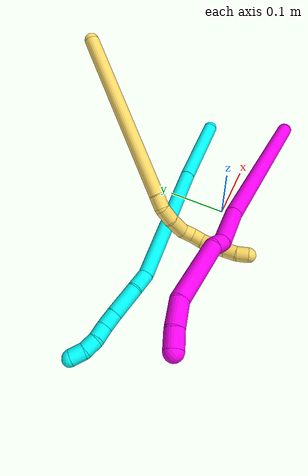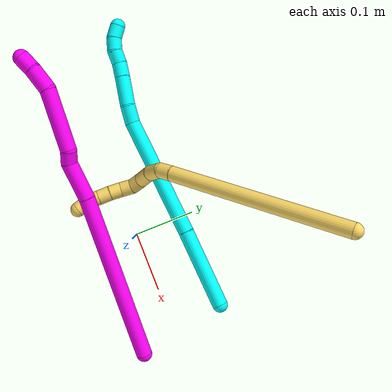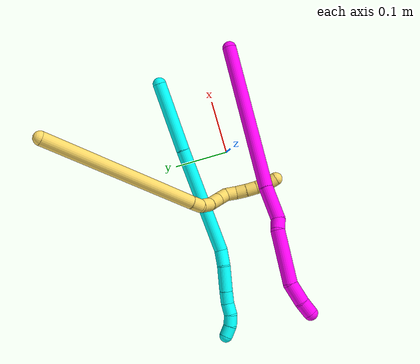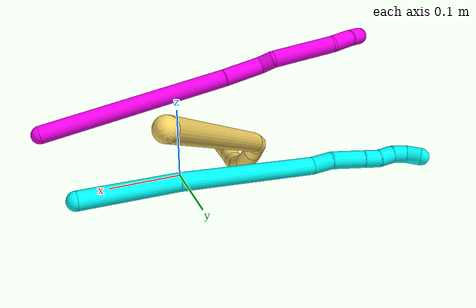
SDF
<sdf version="1.7">
 <world name="default">
  <model name="photoneo_s_sensor">
   <static>1</static>
   <pose>0 0 2 1.57079 1.57079 3.14159</pose>
   <link name="link">
    <inertial><mass>0.1</mass></inertial>
    <sensor name="sensor" type="depth">
     <update_rate>30</update_rate>
     <camera>
      <horizontal_fov>1.22</horizontal_fov>
      <image><width>1920</width><height>1200</height><format>B8G8R8</format></image>
      <clip><near>0.1</near><far>4</far></clip>
      <depth_camera><output>points</output></depth_camera>
     </camera>
     <plugin name="camera_plugin" filename="libgazebo_ros_depth_camera.so">
      <baseline>0.2</baseline>
      <alwaysOn>1</alwaysOn>
      <updateRate>0.0</updateRate>
      <cameraName>camera_ir</cameraName>
      <imageTopicName>/camera/color/image_raw</imageTopicName>
      <cameraInfoTopicName>/camera/color/camera_info</cameraInfoTopicName>
      <depthImageTopicName>/camera/depth/image_raw</depthImageTopicName>
      <depthImageCameraInfoTopicName>/camera/depth/camera_info</depthImageCameraInfoTopicName>
      <pointCloudTopicName>/camera/depth/points</pointCloudTopicName>
      <frameName>fr_optical</frameName>
      <pointCloudCutoff>0.1</pointCloudCutoff>
      <pointCloudCutoffMax>2.0</pointCloudCutoffMax>
      <distortionK1>0</distortionK1>
      <distortionK2>0</distortionK2>
      <distortionK3>0</distortionK3>
      <distortionT1>0</distortionT1>
      <distortionT2>0</distortionT2>
      <CxPrime>0</CxPrime>
      <Cx>0</Cx>
      <Cy>0</Cy>
      <focalLength>0</focalLength>
      <hackBaseline>0</hackBaseline>
     </plugin>
    </sensor>
   </link>
  </model>
  <model name="bin">
   <static>1</static>
   <link name="bottom">
    <collision name="collision-bottom">
     <pose>0 0 -0.01 0 -0 0</pose>
     <geometry><box><size>0.8 0.6 0.02</size></box></geometry>
     <surface>
      <friction><ode><mu>100</mu><mu2>100</mu2></ode></friction>
      <contact><collide_bitmask>65535</collide_bitmask></contact>
     </surface>
    </collision>
   </link>
   <link name="west_wall">
    <collision name="collision-west_wall">
     <pose>-0.41 0 0.1 0 -0 0</pose>
     <geometry><box><size>0.02 0.6 0.2</size></box></geometry>
     <surface>
      <friction><ode><mu>100</mu><mu2>100</mu2></ode></friction>
      <contact><collide_bitmask>65535</collide_bitmask></contact>
     </surface>
    </collision>
   </link>
   <link name="east_wall">
    <collision name="collision-east_wall">
     <pose>0.41 0 0.1 0 -0 0</pose>
     <geometry><box><size>0.02 0.6 0.2</size></box></geometry>
     <surface>
      <friction><ode><mu>100</mu><mu2>100</mu2></ode></friction>
      <contact><collide_bitmask>65535</collide_bitmask></contact>
     </surface>
    </collision>
   </link>
   <link name="south_wall">
    <collision name="collision-south_wall">
     <pose>0 -0.31 0.1 0 -0 0</pose>
     <geometry><box><size>0.8 0.02 0.2</size></box></geometry>
     <surface>
      <friction><ode><mu>100</mu><mu2>100</mu2></ode></friction>
      <contact><collide_bitmask>65535</collide_bitmask></contact>
     </surface>
    </collision>
   </link>
   <link name="north_wall">
    <collision name="collision-north_wall">
     <pose>0 0.31 0.1 0 -0 0</pose>
     <geometry><box><size>0.8 0.02 0.2</size></box></geometry>
     <surface>
      <friction><ode><mu>100</mu><mu2>100</mu2></ode></friction>
      <contact><collide_bitmask>65535</collide_bitmask></contact>
     </surface>
    </collision>
   </link>
  </model>
  <model name="3">
   <static>0</static>
   <link name="3">
    <collision name="collision-cylinder-e_1_1_4">
     <pose>-0.057579 -0.01938 0.023783 0.683741 -1.08124 -0.420883</pose>
     <geometry><cylinder><radius>0.0125</radius><length>0.130484</length></cylinder></geometry>
     <surface>
      <friction><ode><mu>1.16</mu><mu2>1.16</mu2><slip1>0</slip1><slip2>0</slip2></ode></friction>
      <contact><ode><kp>1e+06</kp><kd>1</kd><max_vel>0</max_vel><min_depth>0.001</min_depth></ode></contact>
     </surface>
    </collision>
    <visual name="visual-cylinder-e_1_1_4">
     <pose>-0.057579 -0.01938 0.023783 0.683741 -1.08124 -0.420883</pose>
     <geometry><cylinder><radius>0.0125</radius><length>0.130484</length></cylinder></geometry>
     <material><ambient>0.003922 1 0.996078 1</ambient></material>
    </visual>
    <collision name="collision-cylinder-e_2_4_5">
     <pose>-0.201052 -0.069261 0.091883 0.602794 -1.01122 -0.340861</pose>
     <geometry><cylinder><radius>0.0125</radius><length>0.202705</length></cylinder></geometry>
     <surface>
      <friction><ode><mu>1.16</mu><mu2>1.16</mu2><slip1>0</slip1><slip2>0</slip2></ode></friction>
      <contact><ode><kp>1e+06</kp><kd>1</kd><max_vel>0</max_vel><min_depth>0.001</min_depth></ode></contact>
     </surface>
    </collision>
    <visual name="visual-cylinder-e_2_4_5">
     <pose>-0.201052 -0.069261 0.091883 0.602794 -1.01122 -0.340861</pose>
     <geometry><cylinder><radius>0.0125</radius><length>0.202705</length></cylinder></geometry>
     <material><ambient>0.003922 1 0.996078 1</ambient></material>
    </visual>
    <collision name="collision-cylinder-e_3_5_6">
     <pose>-0.301008 -0.105442 0.138073 1.25239 -1.16876 -0.892481</pose>
     <geometry><cylinder><radius>0.0125</radius><length>0.030561</length></cylinder></geometry>
     <surface>
      <friction><ode><mu>1.16</mu><mu2>1.16</mu2><slip1>0</slip1><slip2>0</slip2></ode></friction>
      <contact><ode><kp>1e+06</kp><kd>1</kd><max_vel>0</max_vel><min_depth>0.001</min_depth></ode></contact>
     </surface>
    </collision>
    <visual name="visual-cylinder-e_3_5_6">
     <pose>-0.301008 -0.105442 0.138073 1.25239 -1.16876 -0.892481</pose>
     <geometry><cylinder><radius>0.0125</radius><length>0.030561</length></cylinder></geometry>
     <material><ambient>0.003922 1 0.996078 1</ambient></material>
    </visual>
    <collision name="collision-cylinder-e_4_6_7">
     <pose>-0.33473 -0.123445 0.14622 1.09987 -0.957755 -0.616264</pose>
     <geometry><cylinder><radius>0.0125</radius><length>0.048074</length></cylinder></geometry>
     <surface>
      <friction><ode><mu>1.16</mu><mu2>1.16</mu2><slip1>0</slip1><slip2>0</slip2></ode></friction>
      <contact><ode><kp>1e+06</kp><kd>1</kd><max_vel>0</max_vel><min_depth>0.001</min_depth></ode></contact>
     </surface>
    </collision>
    <visual name="visual-cylinder-e_4_6_7">
     <pose>-0.33473 -0.123445 0.14622 1.09987 -0.957755 -0.616264</pose>
     <geometry><cylinder><radius>0.0125</radius><length>0.048074</length></cylinder></geometry>
     <material><ambient>0.003922 1 0.996078 1</ambient></material>
    </visual>
    <collision name="collision-cylinder-e_5_7_8">
     <pose>-0.364206 -0.141739 0.155985 1.04165 -0.957096 -0.578499</pose>
     <geometry><cylinder><radius>0.0125</radius><length>0.024016</length></cylinder></geometry>
     <surface>
      <friction><ode><mu>1.16</mu><mu2>1.16</mu2><slip1>0</slip1><slip2>0</slip2></ode></friction>
      <contact><ode><kp>1e+06</kp><kd>1</kd><max_vel>0</max_vel><min_depth>0.001</min_depth></ode></contact>
     </surface>
    </collision>
    <visual name="visual-cylinder-e_5_7_8">
     <pose>-0.364206 -0.141739 0.155985 1.04165 -0.957096 -0.578499</pose>
     <geometry><cylinder><radius>0.0125</radius><length>0.024016</length></cylinder></geometry>
     <material><ambient>0.003922 1 0.996078 1</ambient></material>
    </visual>
    <collision name="collision-cylinder-e_6_8_9">
     <pose>-0.384418 -0.151095 0.161516 1.02881 -1.20735 -0.743195</pose>
     <geometry><cylinder><radius>0.0125</radius><length>0.022242</length></cylinder></geometry>
     <surface>
      <friction><ode><mu>1.16</mu><mu2>1.16</mu2><slip1>0</slip1><slip2>0</slip2></ode></friction>
      <contact><ode><kp>1e+06</kp><kd>1</kd><max_vel>0</max_vel><min_depth>0.001</min_depth></ode></contact>
     </surface>
    </collision>
    <visual name="visual-cylinder-e_6_8_9">
     <pose>-0.384418 -0.151095 0.161516 1.02881 -1.20735 -0.743195</pose>
     <geometry><cylinder><radius>0.0125</radius><length>0.022242</length></cylinder></geometry>
     <material><ambient>0.003922 1 0.996078 1</ambient></material>
    </visual>
    <collision name="collision-cylinder-e_7_9_10">
     <pose>-0.402946 -0.160738 0.165243 1.30726 -0.898105 -0.70718</pose>
     <geometry><cylinder><radius>0.0125</radius><length>0.0208</length></cylinder></geometry>
     <surface>
      <friction><ode><mu>1.16</mu><mu2>1.16</mu2><slip1>0</slip1><slip2>0</slip2></ode></friction>
      <contact><ode><kp>1e+06</kp><kd>1</kd><max_vel>0</max_vel><min_depth>0.001</min_depth></ode></contact>
     </surface>
    </collision>
    <visual name="visual-cylinder-e_7_9_10">
     <pose>-0.402946 -0.160738 0.165243 1.30726 -0.898105 -0.70718</pose>
     <geometry><cylinder><radius>0.0125</radius><length>0.0208</length></cylinder></geometry>
     <material><ambient>0.003922 1 0.996078 1</ambient></material>
    </visual>
    <collision name="collision-cylinder-e_8_10_2">
     <pose>-0.417102 -0.175668 0.167026 1.55984 -0.606838 -0.600618</pose>
     <geometry><cylinder><radius>0.0125</radius><length>0.02112</length></cylinder></geometry>
     <surface>
      <friction><ode><mu>1.16</mu><mu2>1.16</mu2><slip1>0</slip1><slip2>0</slip2></ode></friction>
      <contact><ode><kp>1e+06</kp><kd>1</kd><max_vel>0</max_vel><min_depth>0.001</min_depth></ode></contact>
     </surface>
    </collision>
    <visual name="visual-cylinder-e_8_10_2">
     <pose>-0.417102 -0.175668 0.167026 1.55984 -0.606838 -0.600618</pose>
     <geometry><cylinder><radius>0.0125</radius><length>0.02112</length></cylinder></geometry>
     <material><ambient>0.003922 1 0.996078 1</ambient></material>
    </visual>
    <collision name="collision-sphere-2">
     <pose>-0.423125 -0.184343 0.167121 0 -0 0</pose>
     <geometry><sphere><radius>0.0125</radius></sphere></geometry>
     <surface>
      <friction><ode><mu>1.16</mu><mu2>1.16</mu2><slip1>0</slip1><slip2>0</slip2></ode></friction>
      <contact><ode><kp>1e+06</kp><kd>1</kd><max_vel>0</max_vel><min_depth>0.001</min_depth></ode></contact>
     </surface>
    </collision>
    <visual name="visual-sphere-2">
     <pose>-0.423125 -0.184343 0.167121 0 -0 0</pose>
     <geometry><sphere><radius>0.0125</radius></sphere></geometry>
     <material><ambient>0.003922 1 0.996078 1</ambient></material>
    </visual>
    <collision name="collision-sphere-10">
     <pose>-0.41108 -0.166994 0.166931 0 -0 0</pose>
     <geometry><sphere><radius>0.0125</radius></sphere></geometry>
     <surface>
      <friction><ode><mu>1.16</mu><mu2>1.16</mu2><slip1>0</slip1><slip2>0</slip2></ode></friction>
      <contact><ode><kp>1e+06</kp><kd>1</kd><max_vel>0</max_vel><min_depth>0.001</min_depth></ode></contact>
     </surface>
    </collision>
    <visual name="visual-sphere-10">
     <pose>-0.41108 -0.166994 0.166931 0 -0 0</pose>
     <geometry><sphere><radius>0.0125</radius></sphere></geometry>
     <material><ambient>0.003922 1 0.996078 1</ambient></material>
    </visual>
    <collision name="collision-sphere-9">
     <pose>-0.394812 -0.154482 0.163555 0 -0 0</pose>
     <geometry><sphere><radius>0.0125</radius></sphere></geometry>
     <surface>
      <friction><ode><mu>1.16</mu><mu2>1.16</mu2><slip1>0</slip1><slip2>0</slip2></ode></friction>
      <contact><ode><kp>1e+06</kp><kd>1</kd><max_vel>0</max_vel><min_depth>0.001</min_depth></ode></contact>
     </surface>
    </collision>
    <visual name="visual-sphere-9">
     <pose>-0.394812 -0.154482 0.163555 0 -0 0</pose>
     <geometry><sphere><radius>0.0125</radius></sphere></geometry>
     <material><ambient>0.003922 1 0.996078 1</ambient></material>
    </visual>
    <collision name="collision-sphere-4">
     <pose>-0.115158 -0.038759 0.047565 0 -0 0</pose>
     <geometry><sphere><radius>0.0125</radius></sphere></geometry>
     <surface>
      <friction><ode><mu>1.16</mu><mu2>1.16</mu2><slip1>0</slip1><slip2>0</slip2></ode></friction>
      <contact><ode><kp>1e+06</kp><kd>1</kd><max_vel>0</max_vel><min_depth>0.001</min_depth></ode></contact>
     </surface>
    </collision>
    <visual name="visual-sphere-4">
     <pose>-0.115158 -0.038759 0.047565 0 -0 0</pose>
     <geometry><sphere><radius>0.0125</radius></sphere></geometry>
     <material><ambient>0.003922 1 0.996078 1</ambient></material>
    </visual>
    <collision name="collision-sphere-1">
     <geometry><sphere><radius>0.0125</radius></sphere></geometry>
     <surface>
      <friction><ode><mu>1.16</mu><mu2>1.16</mu2><slip1>0</slip1><slip2>0</slip2></ode></friction>
      <contact><ode><kp>1e+06</kp><kd>1</kd><max_vel>0</max_vel><min_depth>0.001</min_depth></ode></contact>
     </surface>
    </collision>
    <visual name="visual-sphere-1">
     <geometry><sphere><radius>0.0125</radius></sphere></geometry>
     <material><ambient>0.003922 1 0.996078 1</ambient></material>
    </visual>
    <collision name="collision-sphere-8">
     <pose>-0.374023 -0.147708 0.159476 0 -0 0</pose>
     <geometry><sphere><radius>0.0125</radius></sphere></geometry>
     <surface>
      <friction><ode><mu>1.16</mu><mu2>1.16</mu2><slip1>0</slip1><slip2>0</slip2></ode></friction>
      <contact><ode><kp>1e+06</kp><kd>1</kd><max_vel>0</max_vel><min_depth>0.001</min_depth></ode></contact>
     </surface>
    </collision>
    <visual name="visual-sphere-8">
     <pose>-0.374023 -0.147708 0.159476 0 -0 0</pose>
     <geometry><sphere><radius>0.0125</radius></sphere></geometry>
     <material><ambient>0.003922 1 0.996078 1</ambient></material>
    </visual>
    <collision name="collision-sphere-5">
     <pose>-0.286946 -0.099763 0.136202 0 -0 0</pose>
     <geometry><sphere><radius>0.0125</radius></sphere></geometry>
     <surface>
      <friction><ode><mu>1.16</mu><mu2>1.16</mu2><slip1>0</slip1><slip2>0</slip2></ode></friction>
      <contact><ode><kp>1e+06</kp><kd>1</kd><max_vel>0</max_vel><min_depth>0.001</min_depth></ode></contact>
     </surface>
    </collision>
    <visual name="visual-sphere-5">
     <pose>-0.286946 -0.099763 0.136202 0 -0 0</pose>
     <geometry><sphere><radius>0.0125</radius></sphere></geometry>
     <material><ambient>0.003922 1 0.996078 1</ambient></material>
    </visual>
    <collision name="collision-sphere-6">
     <pose>-0.31507 -0.11112 0.139945 0 -0 0</pose>
     <geometry><sphere><radius>0.0125</radius></sphere></geometry>
     <surface>
      <friction><ode><mu>1.16</mu><mu2>1.16</mu2><slip1>0</slip1><slip2>0</slip2></ode></friction>
      <contact><ode><kp>1e+06</kp><kd>1</kd><max_vel>0</max_vel><min_depth>0.001</min_depth></ode></contact>
     </surface>
    </collision>
    <visual name="visual-sphere-6">
     <pose>-0.31507 -0.11112 0.139945 0 -0 0</pose>
     <geometry><sphere><radius>0.0125</radius></sphere></geometry>
     <material><ambient>0.003922 1 0.996078 1</ambient></material>
    </visual>
    <collision name="collision-sphere-7">
     <pose>-0.35439 -0.135769 0.152495 0 -0 0</pose>
     <geometry><sphere><radius>0.0125</radius></sphere></geometry>
     <surface>
      <friction><ode><mu>1.16</mu><mu2>1.16</mu2><slip1>0</slip1><slip2>0</slip2></ode></friction>
      <contact><ode><kp>1e+06</kp><kd>1</kd><max_vel>0</max_vel><min_depth>0.001</min_depth></ode></contact>
     </surface>
    </collision>
    <visual name="visual-sphere-7">
     <pose>-0.35439 -0.135769 0.152495 0 -0 0</pose>
     <geometry><sphere><radius>0.0125</radius></sphere></geometry>
     <material><ambient>0.003922 1 0.996078 1</ambient></material>
    </visual>
    <inertial>
     <pose>-0.21609 -0.079086 0.094561 0 -0 0</pose>
     <mass>0.5</mass>
     <inertia>
      <ixx>0.000241</ixx>
      <ixy>0</ixy>
      <ixz>0</ixz>
      <iyy>0.00067</iyy>
      <iyz>0</iyz>
      <izz>0.001072</izz>
     </inertia>
    </inertial>
   </link>
   <pose>0.154921 0.087585 0.040485 2.74782 0.431727 0.193329</pose>
  </model>
  <model name="5">
   <static>0</static>
   <link name="5">
    <collision name="collision-cylinder-e_1_1_4">
     <pose>-0.025903 0.013572 -0.146652 -3.04931 -0.174097 2.1683</pose>
     <geometry><cylinder><radius>0.0125</radius><length>0.299078</length></cylinder></geometry>
     <surface>
      <friction><ode><mu>1.16</mu><mu2>1.16</mu2><slip1>0</slip1><slip2>0</slip2></ode></friction>
      <contact><ode><kp>1e+06</kp><kd>1</kd><max_vel>0</max_vel><min_depth>0.001</min_depth></ode></contact>
     </surface>
    </collision>
    <visual name="visual-cylinder-e_1_1_4">
     <pose>-0.025903 0.013572 -0.146652 -3.04931 -0.174097 2.1683</pose>
     <geometry><cylinder><radius>0.0125</radius><length>0.299078</length></cylinder></geometry>
     <material><ambient>1 0.858824 0.4 1</ambient></material>
    </visual>
    <collision name="collision-cylinder-e_2_4_5">
     <pose>-0.052812 0.027571 -0.304708 -3.10413 -0.087944 2.33653</pose>
     <geometry><cylinder><radius>0.0125</radius><length>0.022914</length></cylinder></geometry>
     <surface>
      <friction><ode><mu>1.16</mu><mu2>1.16</mu2><slip1>0</slip1><slip2>0</slip2></ode></friction>
      <contact><ode><kp>1e+06</kp><kd>1</kd><max_vel>0</max_vel><min_depth>0.001</min_depth></ode></contact>
     </surface>
    </collision>
    <visual name="visual-cylinder-e_2_4_5">
     <pose>-0.052812 0.027571 -0.304708 -3.10413 -0.087944 2.33653</pose>
     <geometry><cylinder><radius>0.0125</radius><length>0.022914</length></cylinder></geometry>
     <material><ambient>1 0.858824 0.4 1</ambient></material>
    </visual>
    <collision name="collision-cylinder-e_3_5_6">
     <pose>-0.052315 0.023021 -0.327903 2.74217 0.116984 0.56324</pose>
     <geometry><cylinder><radius>0.0125</radius><length>0.025771</length></cylinder></geometry>
     <surface>
      <friction><ode><mu>1.16</mu><mu2>1.16</mu2><slip1>0</slip1><slip2>0</slip2></ode></friction>
      <contact><ode><kp>1e+06</kp><kd>1</kd><max_vel>0</max_vel><min_depth>0.001</min_depth></ode></contact>
     </surface>
    </collision>
    <visual name="visual-cylinder-e_3_5_6">
     <pose>-0.052315 0.023021 -0.327903 2.74217 0.116984 0.56324</pose>
     <geometry><cylinder><radius>0.0125</radius><length>0.025771</length></cylinder></geometry>
     <material><ambient>1 0.858824 0.4 1</ambient></material>
    </visual>
    <collision name="collision-cylinder-e_4_6_7">
     <pose>-0.047063 0.009091 -0.352396 2.52761 0.23665 0.717545</pose>
     <geometry><cylinder><radius>0.0125</radius><length>0.031973</length></cylinder></geometry>
     <surface>
      <friction><ode><mu>1.16</mu><mu2>1.16</mu2><slip1>0</slip1><slip2>0</slip2></ode></friction>
      <contact><ode><kp>1e+06</kp><kd>1</kd><max_vel>0</max_vel><min_depth>0.001</min_depth></ode></contact>
     </surface>
    </collision>
    <visual name="visual-cylinder-e_4_6_7">
     <pose>-0.047063 0.009091 -0.352396 2.52761 0.23665 0.717545</pose>
     <geometry><cylinder><radius>0.0125</radius><length>0.031973</length></cylinder></geometry>
     <material><ambient>1 0.858824 0.4 1</ambient></material>
    </visual>
    <collision name="collision-cylinder-e_5_7_8">
     <pose>-0.045203 -0.006549 -0.372384 2.39902 -0.188734 -0.476942</pose>
     <geometry><cylinder><radius>0.0125</radius><length>0.020135</length></cylinder></geometry>
     <surface>
      <friction><ode><mu>1.16</mu><mu2>1.16</mu2><slip1>0</slip1><slip2>0</slip2></ode></friction>
      <contact><ode><kp>1e+06</kp><kd>1</kd><max_vel>0</max_vel><min_depth>0.001</min_depth></ode></contact>
     </surface>
    </collision>
    <visual name="visual-cylinder-e_5_7_8">
     <pose>-0.045203 -0.006549 -0.372384 2.39902 -0.188734 -0.476942</pose>
     <geometry><cylinder><radius>0.0125</radius><length>0.020135</length></cylinder></geometry>
     <material><ambient>1 0.858824 0.4 1</ambient></material>
    </visual>
    <collision name="collision-cylinder-e_6_8_9">
     <pose>-0.052521 -0.016832 -0.387265 2.69943 -0.573591 -1.83923</pose>
     <geometry><cylinder><radius>0.0125</radius><length>0.02001</length></cylinder></geometry>
     <surface>
      <friction><ode><mu>1.16</mu><mu2>1.16</mu2><slip1>0</slip1><slip2>0</slip2></ode></friction>
      <contact><ode><kp>1e+06</kp><kd>1</kd><max_vel>0</max_vel><min_depth>0.001</min_depth></ode></contact>
     </surface>
    </collision>
    <visual name="visual-cylinder-e_6_8_9">
     <pose>-0.052521 -0.016832 -0.387265 2.69943 -0.573591 -1.83923</pose>
     <geometry><cylinder><radius>0.0125</radius><length>0.02001</length></cylinder></geometry>
     <material><ambient>1 0.858824 0.4 1</ambient></material>
    </visual>
    <collision name="collision-cylinder-e_7_9_10">
     <pose>-0.065146 -0.023909 -0.400907 2.61919 -0.8008 -2.01502</pose>
     <geometry><cylinder><radius>0.0125</radius><length>0.020046</length></cylinder></geometry>
     <surface>
      <friction><ode><mu>1.16</mu><mu2>1.16</mu2><slip1>0</slip1><slip2>0</slip2></ode></friction>
      <contact><ode><kp>1e+06</kp><kd>1</kd><max_vel>0</max_vel><min_depth>0.001</min_depth></ode></contact>
     </surface>
    </collision>
    <visual name="visual-cylinder-e_7_9_10">
     <pose>-0.065146 -0.023909 -0.400907 2.61919 -0.8008 -2.01502</pose>
     <geometry><cylinder><radius>0.0125</radius><length>0.020046</length></cylinder></geometry>
     <material><ambient>1 0.858824 0.4 1</ambient></material>
    </visual>
    <collision name="collision-cylinder-e_8_10_11">
     <pose>-0.079125 -0.031574 -0.412995 2.53583 -0.745453 -1.79307</pose>
     <geometry><cylinder><radius>0.0125</radius><length>0.02</length></cylinder></geometry>
     <surface>
      <friction><ode><mu>1.16</mu><mu2>1.16</mu2><slip1>0</slip1><slip2>0</slip2></ode></friction>
      <contact><ode><kp>1e+06</kp><kd>1</kd><max_vel>0</max_vel><min_depth>0.001</min_depth></ode></contact>
     </surface>
    </collision>
    <visual name="visual-cylinder-e_8_10_11">
     <pose>-0.079125 -0.031574 -0.412995 2.53583 -0.745453 -1.79307</pose>
     <geometry><cylinder><radius>0.0125</radius><length>0.02</length></cylinder></geometry>
     <material><ambient>1 0.858824 0.4 1</ambient></material>
    </visual>
    <collision name="collision-cylinder-e_9_11_12">
     <pose>-0.093009 -0.039902 -0.424765 2.51545 -0.787507 -1.81773</pose>
     <geometry><cylinder><radius>0.0125</radius><length>0.020044</length></cylinder></geometry>
     <surface>
      <friction><ode><mu>1.16</mu><mu2>1.16</mu2><slip1>0</slip1><slip2>0</slip2></ode></friction>
      <contact><ode><kp>1e+06</kp><kd>1</kd><max_vel>0</max_vel><min_depth>0.001</min_depth></ode></contact>
     </surface>
    </collision>
    <visual name="visual-cylinder-e_9_11_12">
     <pose>-0.093009 -0.039902 -0.424765 2.51545 -0.787507 -1.81773</pose>
     <geometry><cylinder><radius>0.0125</radius><length>0.020044</length></cylinder></geometry>
     <material><ambient>1 0.858824 0.4 1</ambient></material>
    </visual>
    <collision name="collision-cylinder-e_10_12_2">
     <pose>-0.106581 -0.050283 -0.434915 2.18739 -0.702406 -1.23319</pose>
     <geometry><cylinder><radius>0.0125</radius><length>0.020028</length></cylinder></geometry>
     <surface>
      <friction><ode><mu>1.16</mu><mu2>1.16</mu2><slip1>0</slip1><slip2>0</slip2></ode></friction>
      <contact><ode><kp>1e+06</kp><kd>1</kd><max_vel>0</max_vel><min_depth>0.001</min_depth></ode></contact>
     </surface>
    </collision>
    <visual name="visual-cylinder-e_10_12_2">
     <pose>-0.106581 -0.050283 -0.434915 2.18739 -0.702406 -1.23319</pose>
     <geometry><cylinder><radius>0.0125</radius><length>0.020028</length></cylinder></geometry>
     <material><ambient>1 0.858824 0.4 1</ambient></material>
    </visual>
    <collision name="collision-sphere-2">
     <pose>-0.11305 -0.056519 -0.439335 0 -0 0</pose>
     <geometry><sphere><radius>0.0125</radius></sphere></geometry>
     <surface>
      <friction><ode><mu>1.16</mu><mu2>1.16</mu2><slip1>0</slip1><slip2>0</slip2></ode></friction>
      <contact><ode><kp>1e+06</kp><kd>1</kd><max_vel>0</max_vel><min_depth>0.001</min_depth></ode></contact>
     </surface>
    </collision>
    <visual name="visual-sphere-2">
     <pose>-0.11305 -0.056519 -0.439335 0 -0 0</pose>
     <geometry><sphere><radius>0.0125</radius></sphere></geometry>
     <material><ambient>1 0.858824 0.4 1</ambient></material>
    </visual>
    <collision name="collision-sphere-12">
     <pose>-0.100111 -0.044047 -0.430495 0 -0 0</pose>
     <geometry><sphere><radius>0.0125</radius></sphere></geometry>
     <surface>
      <friction><ode><mu>1.16</mu><mu2>1.16</mu2><slip1>0</slip1><slip2>0</slip2></ode></friction>
      <contact><ode><kp>1e+06</kp><kd>1</kd><max_vel>0</max_vel><min_depth>0.001</min_depth></ode></contact>
     </surface>
    </collision>
    <visual name="visual-sphere-12">
     <pose>-0.100111 -0.044047 -0.430495 0 -0 0</pose>
     <geometry><sphere><radius>0.0125</radius></sphere></geometry>
     <material><ambient>1 0.858824 0.4 1</ambient></material>
    </visual>
    <collision name="collision-sphere-11">
     <pose>-0.085908 -0.035758 -0.419035 0 -0 0</pose>
     <geometry><sphere><radius>0.0125</radius></sphere></geometry>
     <surface>
      <friction><ode><mu>1.16</mu><mu2>1.16</mu2><slip1>0</slip1><slip2>0</slip2></ode></friction>
      <contact><ode><kp>1e+06</kp><kd>1</kd><max_vel>0</max_vel><min_depth>0.001</min_depth></ode></contact>
     </surface>
    </collision>
    <visual name="visual-sphere-11">
     <pose>-0.085908 -0.035758 -0.419035 0 -0 0</pose>
     <geometry><sphere><radius>0.0125</radius></sphere></geometry>
     <material><ambient>1 0.858824 0.4 1</ambient></material>
    </visual>
    <collision name="collision-sphere-10">
     <pose>-0.072342 -0.027391 -0.406954 0 -0 0</pose>
     <geometry><sphere><radius>0.0125</radius></sphere></geometry>
     <surface>
      <friction><ode><mu>1.16</mu><mu2>1.16</mu2><slip1>0</slip1><slip2>0</slip2></ode></friction>
      <contact><ode><kp>1e+06</kp><kd>1</kd><max_vel>0</max_vel><min_depth>0.001</min_depth></ode></contact>
     </surface>
    </collision>
    <visual name="visual-sphere-10">
     <pose>-0.072342 -0.027391 -0.406954 0 -0 0</pose>
     <geometry><sphere><radius>0.0125</radius></sphere></geometry>
     <material><ambient>1 0.858824 0.4 1</ambient></material>
    </visual>
    <collision name="collision-sphere-9">
     <pose>-0.057951 -0.020428 -0.394861 0 -0 0</pose>
     <geometry><sphere><radius>0.0125</radius></sphere></geometry>
     <surface>
      <friction><ode><mu>1.16</mu><mu2>1.16</mu2><slip1>0</slip1><slip2>0</slip2></ode></friction>
      <contact><ode><kp>1e+06</kp><kd>1</kd><max_vel>0</max_vel><min_depth>0.001</min_depth></ode></contact>
     </surface>
    </collision>
    <visual name="visual-sphere-9">
     <pose>-0.057951 -0.020428 -0.394861 0 -0 0</pose>
     <geometry><sphere><radius>0.0125</radius></sphere></geometry>
     <material><ambient>1 0.858824 0.4 1</ambient></material>
    </visual>
    <collision name="collision-sphere-4">
     <pose>-0.051806 0.027143 -0.293304 0 -0 0</pose>
     <geometry><sphere><radius>0.0125</radius></sphere></geometry>
     <surface>
      <friction><ode><mu>1.16</mu><mu2>1.16</mu2><slip1>0</slip1><slip2>0</slip2></ode></friction>
      <contact><ode><kp>1e+06</kp><kd>1</kd><max_vel>0</max_vel><min_depth>0.001</min_depth></ode></contact>
     </surface>
    </collision>
    <visual name="visual-sphere-4">
     <pose>-0.051806 0.027143 -0.293304 0 -0 0</pose>
     <geometry><sphere><radius>0.0125</radius></sphere></geometry>
     <material><ambient>1 0.858824 0.4 1</ambient></material>
    </visual>
    <collision name="collision-sphere-1">
     <geometry><sphere><radius>0.0125</radius></sphere></geometry>
     <surface>
      <friction><ode><mu>1.16</mu><mu2>1.16</mu2><slip1>0</slip1><slip2>0</slip2></ode></friction>
      <contact><ode><kp>1e+06</kp><kd>1</kd><max_vel>0</max_vel><min_depth>0.001</min_depth></ode></contact>
     </surface>
    </collision>
    <visual name="visual-sphere-1">
     <geometry><sphere><radius>0.0125</radius></sphere></geometry>
     <material><ambient>1 0.858824 0.4 1</ambient></material>
    </visual>
    <collision name="collision-sphere-8">
     <pose>-0.047092 -0.013236 -0.37967 0 -0 0</pose>
     <geometry><sphere><radius>0.0125</radius></sphere></geometry>
     <surface>
      <friction><ode><mu>1.16</mu><mu2>1.16</mu2><slip1>0</slip1><slip2>0</slip2></ode></friction>
      <contact><ode><kp>1e+06</kp><kd>1</kd><max_vel>0</max_vel><min_depth>0.001</min_depth></ode></contact>
     </surface>
    </collision>
    <visual name="visual-sphere-8">
     <pose>-0.047092 -0.013236 -0.37967 0 -0 0</pose>
     <geometry><sphere><radius>0.0125</radius></sphere></geometry>
     <material><ambient>1 0.858824 0.4 1</ambient></material>
    </visual>
    <collision name="collision-sphere-5">
     <pose>-0.053818 0.027998 -0.316113 0 -0 0</pose>
     <geometry><sphere><radius>0.0125</radius></sphere></geometry>
     <surface>
      <friction><ode><mu>1.16</mu><mu2>1.16</mu2><slip1>0</slip1><slip2>0</slip2></ode></friction>
      <contact><ode><kp>1e+06</kp><kd>1</kd><max_vel>0</max_vel><min_depth>0.001</min_depth></ode></contact>
     </surface>
    </collision>
    <visual name="visual-sphere-5">
     <pose>-0.053818 0.027998 -0.316113 0 -0 0</pose>
     <geometry><sphere><radius>0.0125</radius></sphere></geometry>
     <material><ambient>1 0.858824 0.4 1</ambient></material>
    </visual>
    <collision name="collision-sphere-6">
     <pose>-0.050811 0.018045 -0.339693 0 -0 0</pose>
     <geometry><sphere><radius>0.0125</radius></sphere></geometry>
     <surface>
      <friction><ode><mu>1.16</mu><mu2>1.16</mu2><slip1>0</slip1><slip2>0</slip2></ode></friction>
      <contact><ode><kp>1e+06</kp><kd>1</kd><max_vel>0</max_vel><min_depth>0.001</min_depth></ode></contact>
     </surface>
    </collision>
    <visual name="visual-sphere-6">
     <pose>-0.050811 0.018045 -0.339693 0 -0 0</pose>
     <geometry><sphere><radius>0.0125</radius></sphere></geometry>
     <material><ambient>1 0.858824 0.4 1</ambient></material>
    </visual>
    <collision name="collision-sphere-7">
     <pose>-0.043314 0.000137 -0.365099 0 -0 0</pose>
     <geometry><sphere><radius>0.0125</radius></sphere></geometry>
     <surface>
      <friction><ode><mu>1.16</mu><mu2>1.16</mu2><slip1>0</slip1><slip2>0</slip2></ode></friction>
      <contact><ode><kp>1e+06</kp><kd>1</kd><max_vel>0</max_vel><min_depth>0.001</min_depth></ode></contact>
     </surface>
    </collision>
    <visual name="visual-sphere-7">
     <pose>-0.043314 0.000137 -0.365099 0 -0 0</pose>
     <geometry><sphere><radius>0.0125</radius></sphere></geometry>
     <material><ambient>1 0.858824 0.4 1</ambient></material>
    </visual>
    <inertial>
     <pose>-0.041317 0.004377 -0.238657 0 -0 0</pose>
     <mass>0.5</mass>
     <inertia>
      <ixx>0.000578</ixx>
      <ixy>0</ixy>
      <ixz>0</ixz>
      <iyy>0.003105</iyy>
      <iyz>0</iyz>
      <izz>0.000162</izz>
     </inertia>
    </inertial>
   </link>
   <pose>0.097861 0.30056 0.214037 0.384503 0.851942 1.41369</pose>
  </model>
  <model name="10">
   <static>0</static>
   <link name="10">
    <collision name="collision-cylinder-e_1_1_4">
     <pose>-0.132692 -0.006107 0.004286 0.958856 -1.51463 -0.913605</pose>
     <geometry><cylinder><radius>0.0125</radius><length>0.265804</length></cylinder></geometry>
     <surface>
      <friction><ode><mu>1.16</mu><mu2>1.16</mu2><slip1>0</slip1><slip2>0</slip2></ode></friction>
      <contact><ode><kp>1e+06</kp><kd>1</kd><max_vel>0</max_vel><min_depth>0.001</min_depth></ode></contact>
     </surface>
    </collision>
    <visual name="visual-cylinder-e_1_1_4">
     <pose>-0.132692 -0.006107 0.004286 0.958856 -1.51463 -0.913605</pose>
     <geometry><cylinder><radius>0.0125</radius><length>0.265804</length></cylinder></geometry>
     <material><ambient>1 0 0.964706 1</ambient></material>
    </visual>
    <collision name="collision-cylinder-e_2_4_5">
     <pose>-0.294801 -0.01231 0.012609 0.023662 -1.43438 -0.020636</pose>
     <geometry><cylinder><radius>0.0125</radius><length>0.059385</length></cylinder></geometry>
     <surface>
      <friction><ode><mu>1.16</mu><mu2>1.16</mu2><slip1>0</slip1><slip2>0</slip2></ode></friction>
      <contact><ode><kp>1e+06</kp><kd>1</kd><max_vel>0</max_vel><min_depth>0.001</min_depth></ode></contact>
     </surface>
    </collision>
    <visual name="visual-cylinder-e_2_4_5">
     <pose>-0.294801 -0.01231 0.012609 0.023662 -1.43438 -0.020636</pose>
     <geometry><cylinder><radius>0.0125</radius><length>0.059385</length></cylinder></geometry>
     <material><ambient>1 0 0.964706 1</ambient></material>
    </visual>
    <collision name="collision-cylinder-e_3_5_6">
     <pose>-0.333867 -0.011792 0.012882 -2.9801 -1.19436 2.9047</pose>
     <geometry><cylinder><radius>0.0125</radius><length>0.020751</length></cylinder></geometry>
     <surface>
      <friction><ode><mu>1.16</mu><mu2>1.16</mu2><slip1>0</slip1><slip2>0</slip2></ode></friction>
      <contact><ode><kp>1e+06</kp><kd>1</kd><max_vel>0</max_vel><min_depth>0.001</min_depth></ode></contact>
     </surface>
    </collision>
    <visual name="visual-cylinder-e_3_5_6">
     <pose>-0.333867 -0.011792 0.012882 -2.9801 -1.19436 2.9047</pose>
     <geometry><cylinder><radius>0.0125</radius><length>0.020751</length></cylinder></geometry>
     <material><ambient>1 0 0.964706 1</ambient></material>
    </visual>
    <collision name="collision-cylinder-e_4_6_7">
     <pose>-0.390315 -0.015436 0.010625 1.23048 -1.47459 -1.14122</pose>
     <geometry><cylinder><radius>0.0125</radius><length>0.094032</length></cylinder></geometry>
     <surface>
      <friction><ode><mu>1.16</mu><mu2>1.16</mu2><slip1>0</slip1><slip2>0</slip2></ode></friction>
      <contact><ode><kp>1e+06</kp><kd>1</kd><max_vel>0</max_vel><min_depth>0.001</min_depth></ode></contact>
     </surface>
    </collision>
    <visual name="visual-cylinder-e_4_6_7">
     <pose>-0.390315 -0.015436 0.010625 1.23048 -1.47459 -1.14122</pose>
     <geometry><cylinder><radius>0.0125</radius><length>0.094032</length></cylinder></geometry>
     <material><ambient>1 0 0.964706 1</ambient></material>
    </visual>
    <collision name="collision-cylinder-e_5_7_8">
     <pose>-0.453962 -0.019567 0.018631 -0.019556 -1.20259 0.013416</pose>
     <geometry><cylinder><radius>0.0125</radius><length>0.036117</length></cylinder></geometry>
     <surface>
      <friction><ode><mu>1.16</mu><mu2>1.16</mu2><slip1>0</slip1><slip2>0</slip2></ode></friction>
      <contact><ode><kp>1e+06</kp><kd>1</kd><max_vel>0</max_vel><min_depth>0.001</min_depth></ode></contact>
     </surface>
    </collision>
    <visual name="visual-cylinder-e_5_7_8">
     <pose>-0.453962 -0.019567 0.018631 -0.019556 -1.20259 0.013416</pose>
     <geometry><cylinder><radius>0.0125</radius><length>0.036117</length></cylinder></geometry>
     <material><ambient>1 0 0.964706 1</ambient></material>
    </visual>
    <collision name="collision-cylinder-e_6_8_2">
     <pose>-0.481086 -0.020034 0.03121 0.097458 -1.03443 -0.05547</pose>
     <geometry><cylinder><radius>0.0125</radius><length>0.023911</length></cylinder></geometry>
     <surface>
      <friction><ode><mu>1.16</mu><mu2>1.16</mu2><slip1>0</slip1><slip2>0</slip2></ode></friction>
      <contact><ode><kp>1e+06</kp><kd>1</kd><max_vel>0</max_vel><min_depth>0.001</min_depth></ode></contact>
     </surface>
    </collision>
    <visual name="visual-cylinder-e_6_8_2">
     <pose>-0.481086 -0.020034 0.03121 0.097458 -1.03443 -0.05547</pose>
     <geometry><cylinder><radius>0.0125</radius><length>0.023911</length></cylinder></geometry>
     <material><ambient>1 0 0.964706 1</ambient></material>
    </visual>
    <collision name="collision-sphere-2">
     <pose>-0.491363 -0.020628 0.03729 0 -0 0</pose>
     <geometry><sphere><radius>0.0125</radius></sphere></geometry>
     <surface>
      <friction><ode><mu>1.16</mu><mu2>1.16</mu2><slip1>0</slip1><slip2>0</slip2></ode></friction>
      <contact><ode><kp>1e+06</kp><kd>1</kd><max_vel>0</max_vel><min_depth>0.001</min_depth></ode></contact>
     </surface>
    </collision>
    <visual name="visual-sphere-2">
     <pose>-0.491363 -0.020628 0.03729 0 -0 0</pose>
     <geometry><sphere><radius>0.0125</radius></sphere></geometry>
     <material><ambient>1 0 0.964706 1</ambient></material>
    </visual>
    <collision name="collision-sphere-4">
     <pose>-0.265385 -0.012214 0.008572 0 -0 0</pose>
     <geometry><sphere><radius>0.0125</radius></sphere></geometry>
     <surface>
      <friction><ode><mu>1.16</mu><mu2>1.16</mu2><slip1>0</slip1><slip2>0</slip2></ode></friction>
      <contact><ode><kp>1e+06</kp><kd>1</kd><max_vel>0</max_vel><min_depth>0.001</min_depth></ode></contact>
     </surface>
    </collision>
    <visual name="visual-sphere-4">
     <pose>-0.265385 -0.012214 0.008572 0 -0 0</pose>
     <geometry><sphere><radius>0.0125</radius></sphere></geometry>
     <material><ambient>1 0 0.964706 1</ambient></material>
    </visual>
    <collision name="collision-sphere-1">
     <geometry><sphere><radius>0.0125</radius></sphere></geometry>
     <surface>
      <friction><ode><mu>1.16</mu><mu2>1.16</mu2><slip1>0</slip1><slip2>0</slip2></ode></friction>
      <contact><ode><kp>1e+06</kp><kd>1</kd><max_vel>0</max_vel><min_depth>0.001</min_depth></ode></contact>
     </surface>
    </collision>
    <visual name="visual-sphere-1">
     <geometry><sphere><radius>0.0125</radius></sphere></geometry>
     <material><ambient>1 0 0.964706 1</ambient></material>
    </visual>
    <collision name="collision-sphere-8">
     <pose>-0.47081 -0.019439 0.025129 0 -0 0</pose>
     <geometry><sphere><radius>0.0125</radius></sphere></geometry>
     <surface>
      <friction><ode><mu>1.16</mu><mu2>1.16</mu2><slip1>0</slip1><slip2>0</slip2></ode></friction>
      <contact><ode><kp>1e+06</kp><kd>1</kd><max_vel>0</max_vel><min_depth>0.001</min_depth></ode></contact>
     </surface>
    </collision>
    <visual name="visual-sphere-8">
     <pose>-0.47081 -0.019439 0.025129 0 -0 0</pose>
     <geometry><sphere><radius>0.0125</radius></sphere></geometry>
     <material><ambient>1 0 0.964706 1</ambient></material>
    </visual>
    <collision name="collision-sphere-5">
     <pose>-0.324218 -0.012406 0.016646 0 -0 0</pose>
     <geometry><sphere><radius>0.0125</radius></sphere></geometry>
     <surface>
      <friction><ode><mu>1.16</mu><mu2>1.16</mu2><slip1>0</slip1><slip2>0</slip2></ode></friction>
      <contact><ode><kp>1e+06</kp><kd>1</kd><max_vel>0</max_vel><min_depth>0.001</min_depth></ode></contact>
     </surface>
    </collision>
    <visual name="visual-sphere-5">
     <pose>-0.324218 -0.012406 0.016646 0 -0 0</pose>
     <geometry><sphere><radius>0.0125</radius></sphere></geometry>
     <material><ambient>1 0 0.964706 1</ambient></material>
    </visual>
    <collision name="collision-sphere-6">
     <pose>-0.343516 -0.011179 0.009117 0 -0 0</pose>
     <geometry><sphere><radius>0.0125</radius></sphere></geometry>
     <surface>
      <friction><ode><mu>1.16</mu><mu2>1.16</mu2><slip1>0</slip1><slip2>0</slip2></ode></friction>
      <contact><ode><kp>1e+06</kp><kd>1</kd><max_vel>0</max_vel><min_depth>0.001</min_depth></ode></contact>
     </surface>
    </collision>
    <visual name="visual-sphere-6">
     <pose>-0.343516 -0.011179 0.009117 0 -0 0</pose>
     <geometry><sphere><radius>0.0125</radius></sphere></geometry>
     <material><ambient>1 0 0.964706 1</ambient></material>
    </visual>
    <collision name="collision-sphere-7">
     <pose>-0.437114 -0.019694 0.012132 0 -0 0</pose>
     <geometry><sphere><radius>0.0125</radius></sphere></geometry>
     <surface>
      <friction><ode><mu>1.16</mu><mu2>1.16</mu2><slip1>0</slip1><slip2>0</slip2></ode></friction>
      <contact><ode><kp>1e+06</kp><kd>1</kd><max_vel>0</max_vel><min_depth>0.001</min_depth></ode></contact>
     </surface>
    </collision>
    <visual name="visual-sphere-7">
     <pose>-0.437114 -0.019694 0.012132 0 -0 0</pose>
     <geometry><sphere><radius>0.0125</radius></sphere></geometry>
     <material><ambient>1 0 0.964706 1</ambient></material>
    </visual>
    <inertial>
     <pose>-0.248612 -0.010473 0.009147 0 -0 0</pose>
     <mass>0.5</mass>
     <inertia>
      <ixx>-5.3e-05</ixx>
      <ixy>0</ixy>
      <ixz>0</ixz>
      <iyy>0.001595</iyy>
      <iyz>0</iyz>
      <izz>0.001755</izz>
     </inertia>
    </inertial>
   </link>
   <pose>0.177271 -0.052292 0.071446 2.0325 0.247304 -0.060175</pose>
  </model>
 </world>
</sdf>
